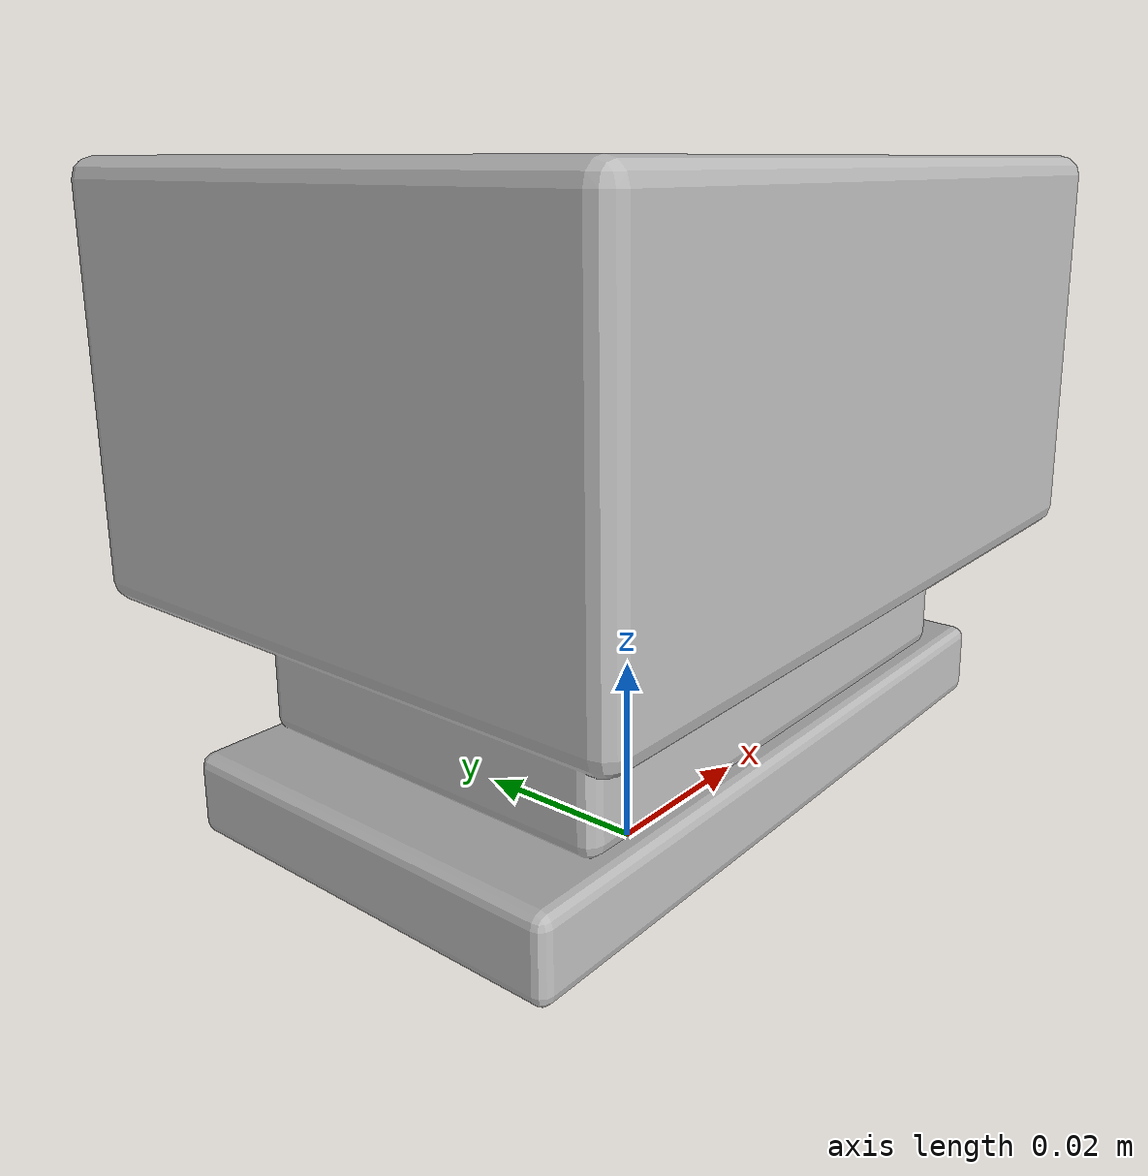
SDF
<?xml version="1.0"?>
<sdf version="1.10">
  <model name="rail_carriage">
    <static>false</static>
    <link name="base_link">
      <inertial>
        <pose>0.000000 0.000000 0.041000 0 0 0</pose>
        <mass>0.8000</mass>
        <inertia>
          <ixx>0.00049627</ixx><ixy>0</ixy><ixz>0</ixz>
          <iyy>0.00068293</iyy><iyz>0</iyz>
          <izz>0.00066667</izz>
        </inertia>
      </inertial>
      <collision name="collision">
        <pose>0.000000 0.000000 0.041000 0 0 0</pose>
        <geometry>
          <box><size>0.080000 0.060000 0.062000</size></box>
        </geometry>
        <surface>
          <friction><ode><mu>0.9</mu><mu2>0.9</mu2></ode></friction>
        </surface>
      </collision>
      <visual name="visual">
        <geometry>
          <mesh><uri>model://rail_carriage/meshes/rail_carriage.obj</uri></mesh>
        </geometry>
      </visual>
    </link>
  </model>
</sdf>
